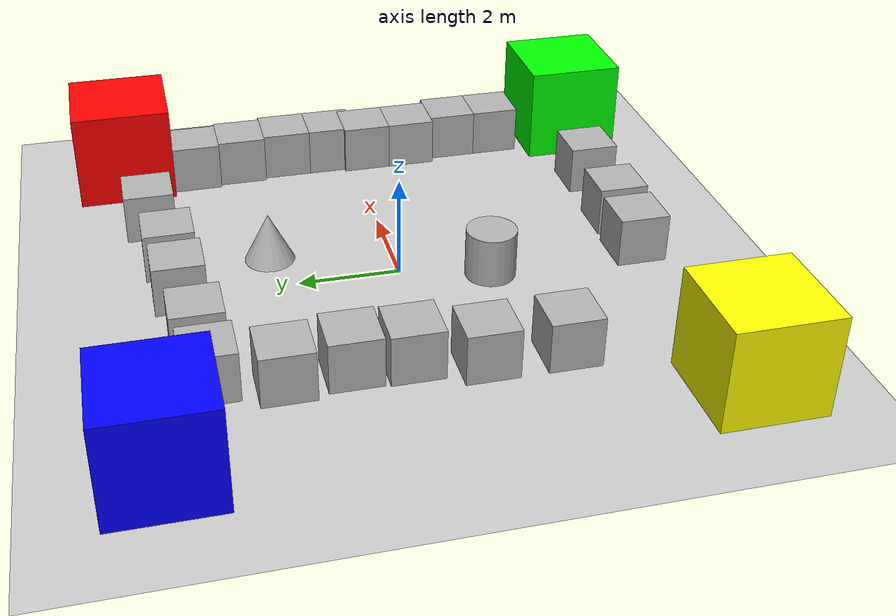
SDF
<sdf version='1.10'>
  <world name='empty_world'>
    <plugin name='gz::sim::systems::Physics' filename='gz-sim-physics-system'/>
    <plugin name='gz::sim::systems::UserCommands' filename='gz-sim-user-commands-system'/>
    <plugin name='gz::sim::systems::SceneBroadcaster' filename='gz-sim-scene-broadcaster-system'/>
    <plugin name='gz::sim::systems::Contact' filename='gz-sim-contact-system'/>
    <plugin name='gz::sim::systems::Sensors' filename='gz-sim-sensors-system'>
      <render_engine>ogre2</render_engine>
    </plugin>
    <physics name='1ms' type='ignored'>
      <max_step_size>0.001</max_step_size>
      <real_time_factor>1</real_time_factor>
      <real_time_update_rate>1000</real_time_update_rate>
    </physics>
    <gravity>0 0 -9.8000000000000007</gravity>
    <magnetic_field>5.5644999999999998e-06 2.2875799999999999e-05 -4.2388400000000002e-05</magnetic_field>
    <atmosphere type='adiabatic'/>
    <scene>
      <ambient>0.400000006 0.400000006 0.400000006 1</ambient>
      <background>0.699999988 0.699999988 0.699999988 1</background>
      <shadows>true</shadows>
    </scene>
    <model name='ground_plane'>
      <static>true</static>
      <link name='link'>
        <collision name='collision'>
          <geometry>
            <plane>
              <normal>0 0 1</normal>
              <size>100 100</size>
            </plane>
          </geometry>
          <surface>
            <friction>
              <ode/>
            </friction>
            <bounce/>
            <contact/>
          </surface>
        </collision>
        <visual name='visual'>
          <geometry>
            <plane>
              <normal>0 0 1</normal>
              <size>100 100</size>
            </plane>
          </geometry>
          <material>
            <ambient>0.800000012 0.800000012 0.800000012 1</ambient>
            <diffuse>0.800000012 0.800000012 0.800000012 1</diffuse>
          </material>
        </visual>
        <pose>0 0 0 0 0 0</pose>
        <inertial>
          <pose>0 0 0 0 0 0</pose>
          <mass>1</mass>
          <inertia>
            <ixx>1</ixx>
            <ixy>0</ixy>
            <ixz>0</ixz>
            <iyy>1</iyy>
            <iyz>0</iyz>
            <izz>1</izz>
          </inertia>
        </inertial>
        <enable_wind>false</enable_wind>
      </link>
      <pose>0 0 0 0 0 0</pose>
      <self_collide>false</self_collide>
    </model>
    <model name='corner_block_1'>
      <static>true</static>
      <pose>5 5 1 0 0 0</pose>
      <link name='link'>
        <collision name='collision'>
          <geometry>
            <box>
              <size>2 2 2</size>
            </box>
          </geometry>
          <surface>
            <friction>
              <ode/>
            </friction>
            <bounce/>
            <contact/>
          </surface>
        </collision>
        <visual name='visual'>
          <geometry>
            <box>
              <size>2 2 2</size>
            </box>
          </geometry>
          <material>
            <ambient>1 0 0 1</ambient>
            <diffuse>1 0 0 1</diffuse>
          </material>
        </visual>
        <pose>0 0 0 0 0 0</pose>
        <inertial>
          <pose>0 0 0 0 0 0</pose>
          <mass>1</mass>
          <inertia>
            <ixx>1</ixx>
            <ixy>0</ixy>
            <ixz>0</ixz>
            <iyy>1</iyy>
            <iyz>0</iyz>
            <izz>1</izz>
          </inertia>
        </inertial>
        <enable_wind>false</enable_wind>
      </link>
      <self_collide>false</self_collide>
    </model>
    <model name='corner_block_2'>
      <static>true</static>
      <pose>5 -5 1 0 0 0</pose>
      <link name='link'>
        <collision name='collision'>
          <geometry>
            <box>
              <size>2 2 2</size>
            </box>
          </geometry>
          <surface>
            <friction>
              <ode/>
            </friction>
            <bounce/>
            <contact/>
          </surface>
        </collision>
        <visual name='visual'>
          <geometry>
            <box>
              <size>2 2 2</size>
            </box>
          </geometry>
          <material>
            <ambient>0 1 0 1</ambient>
            <diffuse>0 1 0 1</diffuse>
          </material>
        </visual>
        <pose>0 0 0 0 0 0</pose>
        <inertial>
          <pose>0 0 0 0 0 0</pose>
          <mass>1</mass>
          <inertia>
            <ixx>1</ixx>
            <ixy>0</ixy>
            <ixz>0</ixz>
            <iyy>1</iyy>
            <iyz>0</iyz>
            <izz>1</izz>
          </inertia>
        </inertial>
        <enable_wind>false</enable_wind>
      </link>
      <self_collide>false</self_collide>
    </model>
    <model name='corner_block_3'>
      <static>true</static>
      <pose>-5 5 1 0 0 0</pose>
      <link name='link'>
        <collision name='collision'>
          <geometry>
            <box>
              <size>2 2 2</size>
            </box>
          </geometry>
          <surface>
            <friction>
              <ode/>
            </friction>
            <bounce/>
            <contact/>
          </surface>
        </collision>
        <visual name='visual'>
          <geometry>
            <box>
              <size>2 2 2</size>
            </box>
          </geometry>
          <material>
            <ambient>0 0 1 1</ambient>
            <diffuse>0 0 1 1</diffuse>
          </material>
        </visual>
        <pose>0 0 0 0 0 0</pose>
        <inertial>
          <pose>0 0 0 0 0 0</pose>
          <mass>1</mass>
          <inertia>
            <ixx>1</ixx>
            <ixy>0</ixy>
            <ixz>0</ixz>
            <iyy>1</iyy>
            <iyz>0</iyz>
            <izz>1</izz>
          </inertia>
        </inertial>
        <enable_wind>false</enable_wind>
      </link>
      <self_collide>false</self_collide>
    </model>
    <model name='corner_block_4'>
      <static>true</static>
      <pose>-5 -5 1 0 0 0</pose>
      <link name='link'>
        <collision name='collision'>
          <geometry>
            <box>
              <size>2 2 2</size>
            </box>
          </geometry>
          <surface>
            <friction>
              <ode/>
            </friction>
            <bounce/>
            <contact/>
          </surface>
        </collision>
        <visual name='visual'>
          <geometry>
            <box>
              <size>2 2 2</size>
            </box>
          </geometry>
          <material>
            <ambient>1 1 0 1</ambient>
            <diffuse>1 1 0 1</diffuse>
          </material>
        </visual>
        <pose>0 0 0 0 0 0</pose>
        <inertial>
          <pose>0 0 0 0 0 0</pose>
          <mass>1</mass>
          <inertia>
            <ixx>1</ixx>
            <ixy>0</ixy>
            <ixz>0</ixz>
            <iyy>1</iyy>
            <iyz>0</iyz>
            <izz>1</izz>
          </inertia>
        </inertial>
        <enable_wind>false</enable_wind>
      </link>
      <self_collide>false</self_collide>
    </model>

    <model name='box'>
      <pose>-2.8406967147962536 4.0291037793995965 0.49999999990199806 6.2287739151293738e-22 9.3279666454713669e-22 -3.6315533669320137e-22</pose>
      <link name='box_link'>
        <inertial>
          <inertia>
            <ixx>0.16666</ixx>
            <ixy>0</ixy>
            <ixz>0</ixz>
            <iyy>0.16666</iyy>
            <iyz>0</iyz>
            <izz>0.16666</izz>
          </inertia>
          <mass>1</mass>
          <pose>0 0 0 0 0 0</pose>
        </inertial>
        <collision name='box_collision'>
          <geometry>
            <box>
              <size>1 1 1</size>
            </box>
          </geometry>
          <surface>
            <friction>
              <ode/>
            </friction>
            <bounce/>
            <contact/>
          </surface>
        </collision>
        <visual name='box_visual'>
          <geometry>
            <box>
              <size>1 1 1</size>
            </box>
          </geometry>
          <material>
            <ambient>0.300000012 0.300000012 0.300000012 1</ambient>
            <diffuse>0.699999988 0.699999988 0.699999988 1</diffuse>
            <specular>1 1 1 1</specular>
          </material>
        </visual>
        <pose>0 0 0 0 0 0</pose>
        <enable_wind>false</enable_wind>
      </link>
      <static>false</static>
      <self_collide>false</self_collide>
    </model>
    <model name='box_0'>
      <pose>-1.5889268771215637 4.0994833385107281 0.49999999990199806 6.2287739151293738e-22 9.3279666454713669e-22 -3.6315533669320137e-22</pose>
      <link name='box_link'>
        <inertial>
          <inertia>
            <ixx>0.16666</ixx>
            <ixy>0</ixy>
            <ixz>0</ixz>
            <iyy>0.16666</iyy>
            <iyz>0</iyz>
            <izz>0.16666</izz>
          </inertia>
          <mass>1</mass>
          <pose>0 0 0 0 0 0</pose>
        </inertial>
        <collision name='box_collision'>
          <geometry>
            <box>
              <size>1 1 1</size>
            </box>
          </geometry>
          <surface>
            <friction>
              <ode/>
            </friction>
            <bounce/>
            <contact/>
          </surface>
        </collision>
        <visual name='box_visual'>
          <geometry>
            <box>
              <size>1 1 1</size>
            </box>
          </geometry>
          <material>
            <ambient>0.300000012 0.300000012 0.300000012 1</ambient>
            <diffuse>0.699999988 0.699999988 0.699999988 1</diffuse>
            <specular>1 1 1 1</specular>
          </material>
        </visual>
        <pose>0 0 0 0 0 0</pose>
        <enable_wind>false</enable_wind>
      </link>
      <static>false</static>
      <self_collide>false</self_collide>
    </model>
    <model name='box_1'>
      <pose>0.01612060155827777 4.283207035753259 0.49999999990199806 6.2287739151293738e-22 9.3279666454713669e-22 -3.6315533669320137e-22</pose>
      <link name='box_link'>
        <inertial>
          <inertia>
            <ixx>0.16666</ixx>
            <ixy>0</ixy>
            <ixz>0</ixz>
            <iyy>0.16666</iyy>
            <iyz>0</iyz>
            <izz>0.16666</izz>
          </inertia>
          <mass>1</mass>
          <pose>0 0 0 0 0 0</pose>
        </inertial>
        <collision name='box_collision'>
          <geometry>
            <box>
              <size>1 1 1</size>
            </box>
          </geometry>
          <surface>
            <friction>
              <ode/>
            </friction>
            <bounce/>
            <contact/>
          </surface>
        </collision>
        <visual name='box_visual'>
          <geometry>
            <box>
              <size>1 1 1</size>
            </box>
          </geometry>
          <material>
            <ambient>0.300000012 0.300000012 0.300000012 1</ambient>
            <diffuse>0.699999988 0.699999988 0.699999988 1</diffuse>
            <specular>1 1 1 1</specular>
          </material>
        </visual>
        <pose>0 0 0 0 0 0</pose>
        <enable_wind>false</enable_wind>
      </link>
      <static>false</static>
      <self_collide>false</self_collide>
    </model>
    <model name='box_2'>
      <pose>1.2236504616878783 4.3617166594250207 0.49999999990199806 6.2287739151293738e-22 9.3279666454713669e-22 -3.6315533669320137e-22</pose>
      <link name='box_link'>
        <inertial>
          <inertia>
            <ixx>0.16666</ixx>
            <ixy>0</ixy>
            <ixz>0</ixz>
            <iyy>0.16666</iyy>
            <iyz>0</iyz>
            <izz>0.16666</izz>
          </inertia>
          <mass>1</mass>
          <pose>0 0 0 0 0 0</pose>
        </inertial>
        <collision name='box_collision'>
          <geometry>
            <box>
              <size>1 1 1</size>
            </box>
          </geometry>
          <surface>
            <friction>
              <ode/>
            </friction>
            <bounce/>
            <contact/>
          </surface>
        </collision>
        <visual name='box_visual'>
          <geometry>
            <box>
              <size>1 1 1</size>
            </box>
          </geometry>
          <material>
            <ambient>0.300000012 0.300000012 0.300000012 1</ambient>
            <diffuse>0.699999988 0.699999988 0.699999988 1</diffuse>
            <specular>1 1 1 1</specular>
          </material>
        </visual>
        <pose>0 0 0 0 0 0</pose>
        <enable_wind>false</enable_wind>
      </link>
      <static>false</static>
      <self_collide>false</self_collide>
    </model>
    <model name='box_3'>
      <pose>2.8037110403591079 4.6288977712916868 0.49999999990199806 6.2287739151293738e-22 9.3279666454713669e-22 -3.6315533669320137e-22</pose>
      <link name='box_link'>
        <inertial>
          <inertia>
            <ixx>0.16666</ixx>
            <ixy>0</ixy>
            <ixz>0</ixz>
            <iyy>0.16666</iyy>
            <iyz>0</iyz>
            <izz>0.16666</izz>
          </inertia>
          <mass>1</mass>
          <pose>0 0 0 0 0 0</pose>
        </inertial>
        <collision name='box_collision'>
          <geometry>
            <box>
              <size>1 1 1</size>
            </box>
          </geometry>
          <surface>
            <friction>
              <ode/>
            </friction>
            <bounce/>
            <contact/>
          </surface>
        </collision>
        <visual name='box_visual'>
          <geometry>
            <box>
              <size>1 1 1</size>
            </box>
          </geometry>
          <material>
            <ambient>0.300000012 0.300000012 0.300000012 1</ambient>
            <diffuse>0.699999988 0.699999988 0.699999988 1</diffuse>
            <specular>1 1 1 1</specular>
          </material>
        </visual>
        <pose>0 0 0 0 0 0</pose>
        <enable_wind>false</enable_wind>
      </link>
      <static>false</static>
      <self_collide>false</self_collide>
    </model>
    <model name='box_4'>
      <pose>4.6982828081433174 3.5000002996119601 0.49999999031321413 -1.2898071447581203e-09 -6.1132736013673763e-10 1.8910106965386066e-07</pose>
      <link name='box_link'>
        <inertial>
          <inertia>
            <ixx>0.16666</ixx>
            <ixy>0</ixy>
            <ixz>0</ixz>
            <iyy>0.16666</iyy>
            <iyz>0</iyz>
            <izz>0.16666</izz>
          </inertia>
          <mass>1</mass>
          <pose>0 0 0 0 0 0</pose>
        </inertial>
        <collision name='box_collision'>
          <geometry>
            <box>
              <size>1 1 1</size>
            </box>
          </geometry>
          <surface>
            <friction>
              <ode/>
            </friction>
            <bounce/>
            <contact/>
          </surface>
        </collision>
        <visual name='box_visual'>
          <geometry>
            <box>
              <size>1 1 1</size>
            </box>
          </geometry>
          <material>
            <ambient>0.300000012 0.300000012 0.300000012 1</ambient>
            <diffuse>0.699999988 0.699999988 0.699999988 1</diffuse>
            <specular>1 1 1 1</specular>
          </material>
        </visual>
        <pose>0 0 0 0 0 0</pose>
        <enable_wind>false</enable_wind>
      </link>
      <static>false</static>
      <self_collide>false</self_collide>
    </model>
    <model name='box_5'>
      <pose>4.7869861811302856 2.4999996313149655 0.49999999019955949 -3.4684686015754661e-09 1.774087162774097e-12 1.2482962086175272e-06</pose>
      <link name='box_link'>
        <inertial>
          <inertia>
            <ixx>0.16666</ixx>
            <ixy>0</ixy>
            <ixz>0</ixz>
            <iyy>0.16666</iyy>
            <iyz>0</iyz>
            <izz>0.16666</izz>
          </inertia>
          <mass>1</mass>
          <pose>0 0 0 0 0 0</pose>
        </inertial>
        <collision name='box_collision'>
          <geometry>
            <box>
              <size>1 1 1</size>
            </box>
          </geometry>
          <surface>
            <friction>
              <ode/>
            </friction>
            <bounce/>
            <contact/>
          </surface>
        </collision>
        <visual name='box_visual'>
          <geometry>
            <box>
              <size>1 1 1</size>
            </box>
          </geometry>
          <material>
            <ambient>0.300000012 0.300000012 0.300000012 1</ambient>
            <diffuse>0.699999988 0.699999988 0.699999988 1</diffuse>
            <specular>1 1 1 1</specular>
          </material>
        </visual>
        <pose>0 0 0 0 0 0</pose>
        <enable_wind>false</enable_wind>
      </link>
      <static>false</static>
      <self_collide>false</self_collide>
    </model>
    <model name='box_6'>
      <pose>4.8735137243649058 1.499999771651221 0.49999999019974306 -2.7319563651864084e-09 5.42779853864582e-12 1.3482872840725464e-06</pose>
      <link name='box_link'>
        <inertial>
          <inertia>
            <ixx>0.16666</ixx>
            <ixy>0</ixy>
            <ixz>0</ixz>
            <iyy>0.16666</iyy>
            <iyz>0</iyz>
            <izz>0.16666</izz>
          </inertia>
          <mass>1</mass>
          <pose>0 0 0 0 0 0</pose>
        </inertial>
        <collision name='box_collision'>
          <geometry>
            <box>
              <size>1 1 1</size>
            </box>
          </geometry>
          <surface>
            <friction>
              <ode/>
            </friction>
            <bounce/>
            <contact/>
          </surface>
        </collision>
        <visual name='box_visual'>
          <geometry>
            <box>
              <size>1 1 1</size>
            </box>
          </geometry>
          <material>
            <ambient>0.300000012 0.300000012 0.300000012 1</ambient>
            <diffuse>0.699999988 0.699999988 0.699999988 1</diffuse>
            <specular>1 1 1 1</specular>
          </material>
        </visual>
        <pose>0 0 0 0 0 0</pose>
        <enable_wind>false</enable_wind>
      </link>
      <static>false</static>
      <self_collide>false</self_collide>
    </model>
    <model name='box_7'>
      <pose>4.8735139029451489 0.50000054282024231 0.49999999019444935 -9.4922686500583645e-09 -2.6116067830261063e-11 7.5324643286464586e-07</pose>
      <link name='box_link'>
        <inertial>
          <inertia>
            <ixx>0.16666</ixx>
            <ixy>0</ixy>
            <ixz>0</ixz>
            <iyy>0.16666</iyy>
            <iyz>0</iyz>
            <izz>0.16666</izz>
          </inertia>
          <mass>1</mass>
          <pose>0 0 0 0 0 0</pose>
        </inertial>
        <collision name='box_collision'>
          <geometry>
            <box>
              <size>1 1 1</size>
            </box>
          </geometry>
          <surface>
            <friction>
              <ode/>
            </friction>
            <bounce/>
            <contact/>
          </surface>
        </collision>
        <visual name='box_visual'>
          <geometry>
            <box>
              <size>1 1 1</size>
            </box>
          </geometry>
          <material>
            <ambient>0.300000012 0.300000012 0.300000012 1</ambient>
            <diffuse>0.699999988 0.699999988 0.699999988 1</diffuse>
            <specular>1 1 1 1</specular>
          </material>
        </visual>
        <pose>0 0 0 0 0 0</pose>
        <enable_wind>false</enable_wind>
      </link>
      <static>false</static>
      <self_collide>false</self_collide>
    </model>
    <model name='box_8'>
      <pose>4.7869879949700289 -0.28427052856962537 0.49999999021052483 1.9588093084295465e-08 2.1932115058784299e-11 -1.1965510061523926e-08</pose>
      <link name='box_link'>
        <inertial>
          <inertia>
            <ixx>0.16666</ixx>
            <ixy>0</ixy>
            <ixz>0</ixz>
            <iyy>0.16666</iyy>
            <iyz>0</iyz>
            <izz>0.16666</izz>
          </inertia>
          <mass>1</mass>
          <pose>0 0 0 0 0 0</pose>
        </inertial>
        <collision name='box_collision'>
          <geometry>
            <box>
              <size>1 1 1</size>
            </box>
          </geometry>
          <surface>
            <friction>
              <ode/>
            </friction>
            <bounce/>
            <contact/>
          </surface>
        </collision>
        <visual name='box_visual'>
          <geometry>
            <box>
              <size>1 1 1</size>
            </box>
          </geometry>
          <material>
            <ambient>0.300000012 0.300000012 0.300000012 1</ambient>
            <diffuse>0.699999988 0.699999988 0.699999988 1</diffuse>
            <specular>1 1 1 1</specular>
          </material>
        </visual>
        <pose>0 0 0 0 0 0</pose>
        <enable_wind>false</enable_wind>
      </link>
      <static>false</static>
      <self_collide>false</self_collide>
    </model>
    <model name='box_9'>
      <pose>4.7869873818280091 -1.2842724684878586 0.49999999022930569 1.9610916348518918e-08 6.8711862432357461e-11 5.8154385411418993e-09</pose>
      <link name='box_link'>
        <inertial>
          <inertia>
            <ixx>0.16666</ixx>
            <ixy>0</ixy>
            <ixz>0</ixz>
            <iyy>0.16666</iyy>
            <iyz>0</iyz>
            <izz>0.16666</izz>
          </inertia>
          <mass>1</mass>
          <pose>0 0 0 0 0 0</pose>
        </inertial>
        <collision name='box_collision'>
          <geometry>
            <box>
              <size>1 1 1</size>
            </box>
          </geometry>
          <surface>
            <friction>
              <ode/>
            </friction>
            <bounce/>
            <contact/>
          </surface>
        </collision>
        <visual name='box_visual'>
          <geometry>
            <box>
              <size>1 1 1</size>
            </box>
          </geometry>
          <material>
            <ambient>0.300000012 0.300000012 0.300000012 1</ambient>
            <diffuse>0.699999988 0.699999988 0.699999988 1</diffuse>
            <specular>1 1 1 1</specular>
          </material>
        </visual>
        <pose>0 0 0 0 0 0</pose>
        <enable_wind>false</enable_wind>
      </link>
      <static>false</static>
      <self_collide>false</self_collide>
    </model>
    <model name='box_10'>
      <pose>4.9507475390106679 -2.2842754295108971 0.49999999021455532 1.9593752013718917e-08 5.5191164892457543e-11 1.5281016318736071e-08</pose>
      <link name='box_link'>
        <inertial>
          <inertia>
            <ixx>0.16666</ixx>
            <ixy>0</ixy>
            <ixz>0</ixz>
            <iyy>0.16666</iyy>
            <iyz>0</iyz>
            <izz>0.16666</izz>
          </inertia>
          <mass>1</mass>
          <pose>0 0 0 0 0 0</pose>
        </inertial>
        <collision name='box_collision'>
          <geometry>
            <box>
              <size>1 1 1</size>
            </box>
          </geometry>
          <surface>
            <friction>
              <ode/>
            </friction>
            <bounce/>
            <contact/>
          </surface>
        </collision>
        <visual name='box_visual'>
          <geometry>
            <box>
              <size>1 1 1</size>
            </box>
          </geometry>
          <material>
            <ambient>0.300000012 0.300000012 0.300000012 1</ambient>
            <diffuse>0.699999988 0.699999988 0.699999988 1</diffuse>
            <specular>1 1 1 1</specular>
          </material>
        </visual>
        <pose>0 0 0 0 0 0</pose>
        <enable_wind>false</enable_wind>
      </link>
      <static>false</static>
      <self_collide>false</self_collide>
    </model>
    <model name='box_11'>
      <pose>4.9507484941082875 -3.284277408470329 0.49999999021333552 1.9587402613165411e-08 1.8431798769278091e-11 1.2242952182244448e-08</pose>
      <link name='box_link'>
        <inertial>
          <inertia>
            <ixx>0.16666</ixx>
            <ixy>0</ixy>
            <ixz>0</ixz>
            <iyy>0.16666</iyy>
            <iyz>0</iyz>
            <izz>0.16666</izz>
          </inertia>
          <mass>1</mass>
          <pose>0 0 0 0 0 0</pose>
        </inertial>
        <collision name='box_collision'>
          <geometry>
            <box>
              <size>1 1 1</size>
            </box>
          </geometry>
          <surface>
            <friction>
              <ode/>
            </friction>
            <bounce/>
            <contact/>
          </surface>
        </collision>
        <visual name='box_visual'>
          <geometry>
            <box>
              <size>1 1 1</size>
            </box>
          </geometry>
          <material>
            <ambient>0.300000012 0.300000012 0.300000012 1</ambient>
            <diffuse>0.699999988 0.699999988 0.699999988 1</diffuse>
            <specular>1 1 1 1</specular>
          </material>
        </visual>
        <pose>0 0 0 0 0 0</pose>
        <enable_wind>false</enable_wind>
      </link>
      <static>false</static>
      <self_collide>false</self_collide>
    </model>
    <model name='box_12'>
      <pose>-3.1192234405276853 2.7556117695904536 0.49999999990199806 6.2287739151293738e-22 9.3279666454713669e-22 -3.6315533669320137e-22</pose>
      <link name='box_link'>
        <inertial>
          <inertia>
            <ixx>0.16666</ixx>
            <ixy>0</ixy>
            <ixz>0</ixz>
            <iyy>0.16666</iyy>
            <iyz>0</iyz>
            <izz>0.16666</izz>
          </inertia>
          <mass>1</mass>
          <pose>0 0 0 0 0 0</pose>
        </inertial>
        <collision name='box_collision'>
          <geometry>
            <box>
              <size>1 1 1</size>
            </box>
          </geometry>
          <surface>
            <friction>
              <ode/>
            </friction>
            <bounce/>
            <contact/>
          </surface>
        </collision>
        <visual name='box_visual'>
          <geometry>
            <box>
              <size>1 1 1</size>
            </box>
          </geometry>
          <material>
            <ambient>0.300000012 0.300000012 0.300000012 1</ambient>
            <diffuse>0.699999988 0.699999988 0.699999988 1</diffuse>
            <specular>1 1 1 1</specular>
          </material>
        </visual>
        <pose>0 0 0 0 0 0</pose>
        <enable_wind>false</enable_wind>
      </link>
      <static>false</static>
      <self_collide>false</self_collide>
    </model>
    <model name='box_13'>
      <pose>-2.9978296106283331 1.5610938923998203 0.49999999990199806 6.2287739151293738e-22 9.3279666454713669e-22 -3.6315533669320137e-22</pose>
      <link name='box_link'>
        <inertial>
          <inertia>
            <ixx>0.16666</ixx>
            <ixy>0</ixy>
            <ixz>0</ixz>
            <iyy>0.16666</iyy>
            <iyz>0</iyz>
            <izz>0.16666</izz>
          </inertia>
          <mass>1</mass>
          <pose>0 0 0 0 0 0</pose>
        </inertial>
        <collision name='box_collision'>
          <geometry>
            <box>
              <size>1 1 1</size>
            </box>
          </geometry>
          <surface>
            <friction>
              <ode/>
            </friction>
            <bounce/>
            <contact/>
          </surface>
        </collision>
        <visual name='box_visual'>
          <geometry>
            <box>
              <size>1 1 1</size>
            </box>
          </geometry>
          <material>
            <ambient>0.300000012 0.300000012 0.300000012 1</ambient>
            <diffuse>0.699999988 0.699999988 0.699999988 1</diffuse>
            <specular>1 1 1 1</specular>
          </material>
        </visual>
        <pose>0 0 0 0 0 0</pose>
        <enable_wind>false</enable_wind>
      </link>
      <static>false</static>
      <self_collide>false</self_collide>
    </model>
    <model name='box_14'>
      <pose>-3.0365434885635221 0.47870113109214696 0.49999999990199806 6.2287739151293738e-22 9.3279666454713669e-22 -3.6315533669320137e-22</pose>
      <link name='box_link'>
        <inertial>
          <inertia>
            <ixx>0.16666</ixx>
            <ixy>0</ixy>
            <ixz>0</ixz>
            <iyy>0.16666</iyy>
            <iyz>0</iyz>
            <izz>0.16666</izz>
          </inertia>
          <mass>1</mass>
          <pose>0 0 0 0 0 0</pose>
        </inertial>
        <collision name='box_collision'>
          <geometry>
            <box>
              <size>1 1 1</size>
            </box>
          </geometry>
          <surface>
            <friction>
              <ode/>
            </friction>
            <bounce/>
            <contact/>
          </surface>
        </collision>
        <visual name='box_visual'>
          <geometry>
            <box>
              <size>1 1 1</size>
            </box>
          </geometry>
          <material>
            <ambient>0.300000012 0.300000012 0.300000012 1</ambient>
            <diffuse>0.699999988 0.699999988 0.699999988 1</diffuse>
            <specular>1 1 1 1</specular>
          </material>
        </visual>
        <pose>0 0 0 0 0 0</pose>
        <enable_wind>false</enable_wind>
      </link>
      <static>false</static>
      <self_collide>false</self_collide>
    </model>
    <model name='box_15'>
      <pose>-3.3100686345079566 -0.78649667588175465 0.49999999990199806 6.2287739151293738e-22 9.3279666454713669e-22 -3.6315533669320137e-22</pose>
      <link name='box_link'>
        <inertial>
          <inertia>
            <ixx>0.16666</ixx>
            <ixy>0</ixy>
            <ixz>0</ixz>
            <iyy>0.16666</iyy>
            <iyz>0</iyz>
            <izz>0.16666</izz>
          </inertia>
          <mass>1</mass>
          <pose>0 0 0 0 0 0</pose>
        </inertial>
        <collision name='box_collision'>
          <geometry>
            <box>
              <size>1 1 1</size>
            </box>
          </geometry>
          <surface>
            <friction>
              <ode/>
            </friction>
            <bounce/>
            <contact/>
          </surface>
        </collision>
        <visual name='box_visual'>
          <geometry>
            <box>
              <size>1 1 1</size>
            </box>
          </geometry>
          <material>
            <ambient>0.300000012 0.300000012 0.300000012 1</ambient>
            <diffuse>0.699999988 0.699999988 0.699999988 1</diffuse>
            <specular>1 1 1 1</specular>
          </material>
        </visual>
        <pose>0 0 0 0 0 0</pose>
        <enable_wind>false</enable_wind>
      </link>
      <static>false</static>
      <self_collide>false</self_collide>
    </model>
    <model name='box_16'>
      <pose>-3.3100693525914568 -2.2985676749529174 0.49999999990199806 6.2287739151293738e-22 9.3279666454713669e-22 -3.6315533669320137e-22</pose>
      <link name='box_link'>
        <inertial>
          <inertia>
            <ixx>0.16666</ixx>
            <ixy>0</ixy>
            <ixz>0</ixz>
            <iyy>0.16666</iyy>
            <iyz>0</iyz>
            <izz>0.16666</izz>
          </inertia>
          <mass>1</mass>
          <pose>0 0 0 0 0 0</pose>
        </inertial>
        <collision name='box_collision'>
          <geometry>
            <box>
              <size>1 1 1</size>
            </box>
          </geometry>
          <surface>
            <friction>
              <ode/>
            </friction>
            <bounce/>
            <contact/>
          </surface>
        </collision>
        <visual name='box_visual'>
          <geometry>
            <box>
              <size>1 1 1</size>
            </box>
          </geometry>
          <material>
            <ambient>0.300000012 0.300000012 0.300000012 1</ambient>
            <diffuse>0.699999988 0.699999988 0.699999988 1</diffuse>
            <specular>1 1 1 1</specular>
          </material>
        </visual>
        <pose>0 0 0 0 0 0</pose>
        <enable_wind>false</enable_wind>
      </link>
      <static>false</static>
      <self_collide>false</self_collide>
    </model>
    <model name='box_17'>
      <pose>2.7321313227852322 -4.8438885469968609 0.49999999990199806 6.2287739151293738e-22 9.3279666454713669e-22 -3.6315533669320137e-22</pose>
      <link name='box_link'>
        <inertial>
          <inertia>
            <ixx>0.16666</ixx>
            <ixy>0</ixy>
            <ixz>0</ixz>
            <iyy>0.16666</iyy>
            <iyz>0</iyz>
            <izz>0.16666</izz>
          </inertia>
          <mass>1</mass>
          <pose>0 0 0 0 0 0</pose>
        </inertial>
        <collision name='box_collision'>
          <geometry>
            <box>
              <size>1 1 1</size>
            </box>
          </geometry>
          <surface>
            <friction>
              <ode/>
            </friction>
            <bounce/>
            <contact/>
          </surface>
        </collision>
        <visual name='box_visual'>
          <geometry>
            <box>
              <size>1 1 1</size>
            </box>
          </geometry>
          <material>
            <ambient>0.300000012 0.300000012 0.300000012 1</ambient>
            <diffuse>0.699999988 0.699999988 0.699999988 1</diffuse>
            <specular>1 1 1 1</specular>
          </material>
        </visual>
        <pose>0 0 0 0 0 0</pose>
        <enable_wind>false</enable_wind>
      </link>
      <static>false</static>
      <self_collide>false</self_collide>
    </model>
    <model name='box_18'>
      <pose>0.92872982199616771 -4.8076305463103086 0.49999999990199806 6.2287739151293738e-22 9.3279666454713669e-22 -3.6315533669320137e-22</pose>
      <link name='box_link'>
        <inertial>
          <inertia>
            <ixx>0.16666</ixx>
            <ixy>0</ixy>
            <ixz>0</ixz>
            <iyy>0.16666</iyy>
            <iyz>0</iyz>
            <izz>0.16666</izz>
          </inertia>
          <mass>1</mass>
          <pose>0 0 0 0 0 0</pose>
        </inertial>
        <collision name='box_collision'>
          <geometry>
            <box>
              <size>1 1 1</size>
            </box>
          </geometry>
          <surface>
            <friction>
              <ode/>
            </friction>
            <bounce/>
            <contact/>
          </surface>
        </collision>
        <visual name='box_visual'>
          <geometry>
            <box>
              <size>1 1 1</size>
            </box>
          </geometry>
          <material>
            <ambient>0.300000012 0.300000012 0.300000012 1</ambient>
            <diffuse>0.699999988 0.699999988 0.699999988 1</diffuse>
            <specular>1 1 1 1</specular>
          </material>
        </visual>
        <pose>0 0 0 0 0 0</pose>
        <enable_wind>false</enable_wind>
      </link>
      <static>false</static>
      <self_collide>false</self_collide>
    </model>
    <model name='box_19'>
      <pose>-0.30565432447156837 -4.7619497408443197 0.49999999990199806 6.2287739151293738e-22 9.3279666454713669e-22 -3.6315533669320137e-22</pose>
      <link name='box_link'>
        <inertial>
          <inertia>
            <ixx>0.16666</ixx>
            <ixy>0</ixy>
            <ixz>0</ixz>
            <iyy>0.16666</iyy>
            <iyz>0</iyz>
            <izz>0.16666</izz>
          </inertia>
          <mass>1</mass>
          <pose>0 0 0 0 0 0</pose>
        </inertial>
        <collision name='box_collision'>
          <geometry>
            <box>
              <size>1 1 1</size>
            </box>
          </geometry>
          <surface>
            <friction>
              <ode/>
            </friction>
            <bounce/>
            <contact/>
          </surface>
        </collision>
        <visual name='box_visual'>
          <geometry>
            <box>
              <size>1 1 1</size>
            </box>
          </geometry>
          <material>
            <ambient>0.300000012 0.300000012 0.300000012 1</ambient>
            <diffuse>0.699999988 0.699999988 0.699999988 1</diffuse>
            <specular>1 1 1 1</specular>
          </material>
        </visual>
        <pose>0 0 0 0 0 0</pose>
        <enable_wind>false</enable_wind>
      </link>
      <static>false</static>
      <self_collide>false</self_collide>
    </model>
    <model name='cone'>
      <pose>1.0446714747925037 2.4064009798121244 0.49999999993296756 5.2545596358786652e-17 -7.7132841034561468e-10 1.0690809589845816e-23</pose>
      <link name='cone_link'>
        <inertial>
          <inertia>
            <ixx>0.074999999999999997</ixx>
            <ixy>0</ixy>
            <ixz>0</ixz>
            <iyy>0.074999999999999997</iyy>
            <iyz>0</iyz>
            <izz>0.074999999999999997</izz>
          </inertia>
          <mass>1</mass>
          <pose>0 0 0 0 0 0</pose>
        </inertial>
        <collision name='cone_collision'>
          <geometry>
            <cone>
              <radius>0.5</radius>
              <length>1</length>
            </cone>
          </geometry>
          <surface>
            <friction>
              <ode/>
            </friction>
            <bounce/>
            <contact/>
          </surface>
        </collision>
        <visual name='cone_visual'>
          <geometry>
            <cone>
              <radius>0.5</radius>
              <length>1</length>
            </cone>
          </geometry>
          <material>
            <ambient>0.300000012 0.300000012 0.300000012 1</ambient>
            <diffuse>0.699999988 0.699999988 0.699999988 1</diffuse>
            <specular>1 1 1 1</specular>
          </material>
        </visual>
        <pose>0 0 0 0 0 0</pose>
        <enable_wind>false</enable_wind>
      </link>
      <static>false</static>
      <self_collide>false</self_collide>
    </model>
    <model name='cylinder'>
      <pose>-0.47098242057506745 -1.7205281005998443 0.49999942638036005 5.6761636743505651e-20 3.0811126331413893e-20 3.3261675683230496e-20</pose>
      <link name='cylinder_link'>
        <inertial>
          <inertia>
            <ixx>0.14580000000000001</ixx>
            <ixy>0</ixy>
            <ixz>0</ixz>
            <iyy>0.14580000000000001</iyy>
            <iyz>0</iyz>
            <izz>0.125</izz>
          </inertia>
          <mass>1</mass>
          <pose>0 0 0 0 0 0</pose>
        </inertial>
        <collision name='cylinder_collision'>
          <geometry>
            <cylinder>
              <radius>0.5</radius>
              <length>1</length>
            </cylinder>
          </geometry>
          <surface>
            <friction>
              <ode/>
            </friction>
            <bounce/>
            <contact/>
          </surface>
        </collision>
        <visual name='cylinder_visual'>
          <geometry>
            <cylinder>
              <radius>0.5</radius>
              <length>1</length>
            </cylinder>
          </geometry>
          <material>
            <ambient>0.300000012 0.300000012 0.300000012 1</ambient>
            <diffuse>0.699999988 0.699999988 0.699999988 1</diffuse>
            <specular>1 1 1 1</specular>
          </material>
        </visual>
        <pose>0 0 0 0 0 0</pose>
        <enable_wind>false</enable_wind>
      </link>
      <static>false</static>
      <self_collide>false</self_collide>
    </model>
    <light name='sun' type='directional'>
      <pose>0 0 10 0 0 0</pose>
      <cast_shadows>true</cast_shadows>
      <intensity>1</intensity>
      <direction>-0.5 0.10000000000000001 -0.90000000000000002</direction>
      <diffuse>0.800000012 0.800000012 0.800000012 1</diffuse>
      <specular>0.200000003 0.200000003 0.200000003 1</specular>
      <attenuation>
        <range>10</range>
        <linear>1</linear>
        <constant>1</constant>
        <quadratic>0</quadratic>
      </attenuation>
      <spot>
        <inner_angle>0</inner_angle>
        <outer_angle>0</outer_angle>
        <falloff>0</falloff>
      </spot>
    </light>
  </world>
</sdf>
